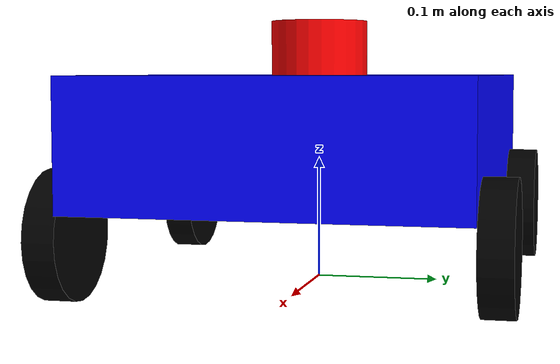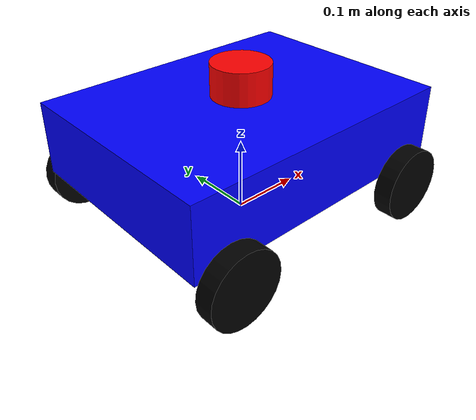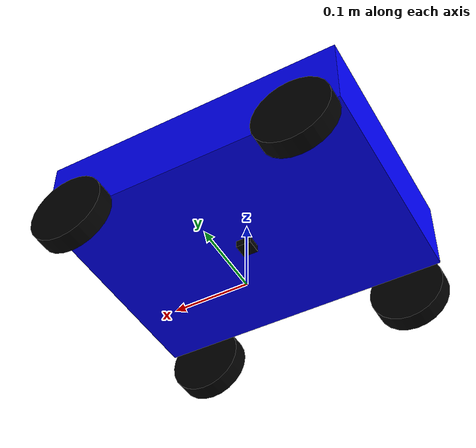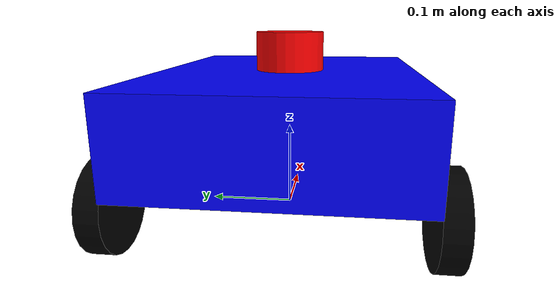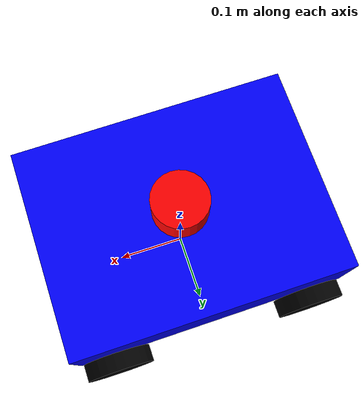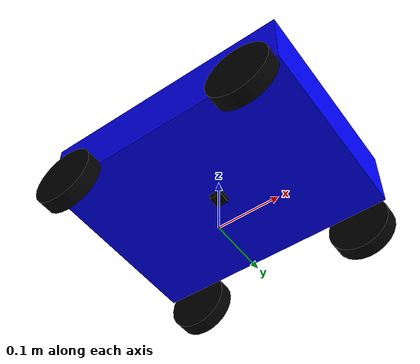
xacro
<?xml version="1.0"?>
<robot xmlns:xacro="http://www.ros.org/wiki/xacro" name="my_nav2_bot">

    <xacro:arg name="use_gazebo_odom_tf" default="false"/>

    <!-- 差速底盘变体：Gazebo Classic 用 diff_drive 吃 /cmd_vel 的 vx + wz。
         odom -> base_footprint 仅在 use_gazebo_odom_tf:=true 时由插件发布。 -->

    <!--机器人身体-->
    <xacro:property name="chassis_length" value="0.4"/>
    <xacro:property name="chassis_width" value="0.3"/>
    <xacro:property name="chassis_height" value="0.1"/>

    <!--轮子形态：普通圆柱轮，四轮同侧并联差速（skid-steer）-->
    <xacro:property name="wheel_radius" value="0.05"/>
    <xacro:property name="wheel_width" value="0.025"/>

    <!--轮子位置-->
    <xacro:property name="wheel_offset_x" value="${chassis_length / 2 - 0.05}"/>
    <xacro:property name="wheel_offset_y" value="${chassis_width / 2 + wheel_width / 2}"/>
    <xacro:property name="wheel_offset_z" value="-0.02"/>
    <xacro:property name="wheel_separation" value="${2 * wheel_offset_y}"/>

    <!--雷达形态-->
    <xacro:property name="laser_radius" value="0.03"/>
    <xacro:property name="laser_height" value="0.04"/>

    <!--深度相机形态-->
    <xacro:property name="camera_radius" value="0.03"/>
    <xacro:property name="camera_height" value="0.04"/>

    <!--机器人机身的物理属性-->
    <xacro:macro name="inertial_box" params="mass l w h *origin">
        <inertial>
            <xacro:insert_block name="origin"/>
            <mass value="${mass}"/>
            <inertia ixx="${(1/12) * mass * (w*w + h*h)}" ixy="0.0" ixz="0.0"
                    iyy="${(1/12) * mass * (l*l + h*h)}" iyz="0.0"
                    izz="${(1/12) * mass * (l*l + w*w)}"/>
        </inertial>
    </xacro:macro>

    <!--机器人轮胎的物理属性-->
    <xacro:macro name="inertial_cylinder" params="mass r h *origin">
        <inertial>
            <xacro:insert_block name="origin"/>
            <mass value="${mass}"/>
            <inertia ixx="${(1/12) * mass * (3*r*r + h*h)}" ixy="0.0" ixz="0.0"
                    iyy="${(1/12) * mass * (3*r*r + h*h)}" iyz="0.0"
                    izz="${(1/2) * mass * r*r}"/>
        </inertial>
    </xacro:macro>

    <!--声明材质颜色-->
    <material name="blue">
        <color rgba="0 0 1 1"/>
    </material>
    <material name="black">
        <color rgba="0 0 0 1"/>
    </material>
    <material name="red">
        <color rgba="1 0 0 1"/>
    </material>

    <!--机器人本体中心-->
    <link name="base_link">
        <visual>
            <origin xyz="0 0 ${chassis_height / 2}" rpy="0 0 0"/>
            <!--身体大小-->
            <geometry>
                <!--长方体-->
                <box size="${chassis_length} ${chassis_width} ${chassis_height}"/>
            </geometry>
            <material name="blue"/>
        </visual>
        <!--碰撞箱-->
        <collision>
            <origin xyz="0 0 ${chassis_height / 2}" rpy="0 0 0"/>
            <!--身体大小-->
            <geometry>
                <box size="${chassis_length} ${chassis_width} ${chassis_height}"/>
            </geometry>
        </collision>
        <!--物理属性-->
        <xacro:inertial_box mass="5.0" l="${chassis_length}" w="${chassis_width}" h="${chassis_height}">
            <origin xyz="0 0 ${chassis_height / 2}" rpy="0 0 0"/>
        </xacro:inertial_box>
    </link>

    <!--机器人中心在底面的投影-->
    <link name="base_footprint"/>

    <joint name="base_joint" type="fixed">
        <parent link="base_footprint"/>
        <child link="base_link"/>
        <origin xyz="0 0 ${chassis_height/2 - wheel_offset_z}" rpy="0 0 0"/>
    </joint>

    <!-- Drive wheels: 2WD differential. Rear contacts are low-friction
         supports. Four driven wheels overconstrain yaw in Gazebo ODE. -->
    <xacro:macro name="drive_wheel" params="prefix reflect_x reflect_y">

        <link name="${prefix}_wheel_link">
            <visual>
                <!--圆柱默认沿 z，绕 x 转 pi/2 后轮轴沿 y-->
                <origin xyz="0 0 0" rpy="${pi / 2} 0 0"/>
                <geometry>
                    <cylinder radius="${wheel_radius}" length="${wheel_width}"/>
                </geometry>
                <material name="black"/>
            </visual>
            <collision>
                <origin xyz="0 0 0" rpy="0 0 0"/>
                <geometry>
                    <sphere radius="${wheel_radius}"/>
                </geometry>
            </collision>
            <xacro:inertial_cylinder mass="0.5" r="${wheel_radius}" h="${wheel_width}">
                <origin xyz="0 0 0" rpy="${pi / 2} 0 0"/>
            </xacro:inertial_cylinder>
        </link>

        <joint name="${prefix}_wheel_joint" type="continuous">
            <parent link="base_link"/>
            <child link="${prefix}_wheel_link"/>
            <origin xyz="${reflect_x * wheel_offset_x} ${reflect_y * wheel_offset_y} ${wheel_offset_z}" rpy="0 0 0"/>
            <axis xyz="0 1 0"/>
            <limit effort="50" velocity="50"/>
            <dynamics damping="0.0" friction="0.0"/>
        </joint>

        <gazebo reference="${prefix}_wheel_link">
            <mu1>1.0</mu1>
            <mu2>1.0</mu2>
            <kp>200000.0</kp>
            <kd>10.0</kd>
            <minDepth>0.001</minDepth>
            <maxVel>0.1</maxVel>
        </gazebo>
    </xacro:macro>

    <!-- Rear supports: same visual, ice-like contact so they do not fight yaw. -->
    <xacro:macro name="support_wheel" params="prefix reflect_x reflect_y">

        <link name="${prefix}_wheel_link">
            <visual>
                <origin xyz="0 0 0" rpy="${pi / 2} 0 0"/>
                <geometry>
                    <cylinder radius="${wheel_radius}" length="${wheel_width}"/>
                </geometry>
                <material name="black"/>
            </visual>
            <collision>
                <origin xyz="0 0 0" rpy="0 0 0"/>
                <geometry>
                    <sphere radius="${wheel_radius}"/>
                </geometry>
            </collision>
            <xacro:inertial_cylinder mass="0.2" r="${wheel_radius}" h="${wheel_width}">
                <origin xyz="0 0 0" rpy="${pi / 2} 0 0"/>
            </xacro:inertial_cylinder>
        </link>

        <joint name="${prefix}_wheel_joint" type="fixed">
            <parent link="base_link"/>
            <child link="${prefix}_wheel_link"/>
            <origin xyz="${reflect_x * wheel_offset_x} ${reflect_y * wheel_offset_y} ${wheel_offset_z}" rpy="0 0 0"/>
        </joint>

        <gazebo reference="${prefix}_wheel_link">
            <mu1>0.02</mu1>
            <mu2>0.02</mu2>
            <slip1>0.2</slip1>
            <slip2>0.2</slip2>
            <kp>100000.0</kp>
            <kd>10.0</kd>
            <minDepth>0.001</minDepth>
            <maxVel>0.1</maxVel>
        </gazebo>
    </xacro:macro>

    <xacro:drive_wheel prefix="front_left" reflect_x="1" reflect_y="1"/>
    <xacro:drive_wheel prefix="front_right" reflect_x="1" reflect_y="-1"/>
    <xacro:support_wheel prefix="rear_left" reflect_x="-1" reflect_y="1"/>
    <xacro:support_wheel prefix="rear_right" reflect_x="-1" reflect_y="-1"/>

    <!-- 虚拟 2D 扫描坐标系：实车没有独立 2D 雷达。
         /scan 由 my_nav2_robot 的 pointcloud_to_laserscan_node 从 Mid360 点云水平切片生成，
         frame_id 固定为 laser_link，避免改 AMCL / SLAM Toolbox / costmap。 -->
    <link name="laser_link">
        <visual>
            <geometry>
                <cylinder radius="${laser_radius}" length="${laser_height}"/>
            </geometry>
            <material name="red"/>
        </visual>
        <xacro:inertial_cylinder mass="0.1" r="${laser_radius}" h="${laser_height}">
            <origin xyz="0 0 0" rpy="0 0 0"/>
        </xacro:inertial_cylinder>
    </link>

    <joint name="laser_joint" type="fixed">
        <parent link="base_link"/>
        <child link="laser_link"/>
        <origin xyz="0 0 ${chassis_height + laser_height / 2}" rpy="0 0 0"/>
    </joint>

    <!-- Mid360-style 3D LiDAR used by the LIO frontend. -->
    <link name="livox_frame">
        <visual>
            <geometry>
                <cylinder radius="0.04" length="0.05"/>
            </geometry>
            <material name="red"/>
        </visual>
        <xacro:inertial_cylinder mass="0.2" r="0.04" h="0.05">
            <origin xyz="0 0 0" rpy="0 0 0"/>
        </xacro:inertial_cylinder>
    </link>

    <joint name="livox_joint" type="fixed">
        <parent link="base_link"/>
        <child link="livox_frame"/>
        <origin xyz="0 0 0.12" rpy="0 0 0"/>
    </joint>

    <!-- Keep the 3D LiDAR on its own SDF link instead of merging both lidars. -->
    <gazebo reference="livox_joint">
        <preserveFixedJoint>true</preserveFixedJoint>
    </gazebo>

    <!--深度相机-->
    <!--物理位置-->

    <!--imu-->
    <link name = "imu_link">
        <visual>
            <geometry>
                <box size = "0.02 0.02 0.02"/>
            </geometry>
            <material name = "black"/>
        </visual>
        <xacro:inertial_box mass="0.01" l="0.02" w="0.02" h="0.02">
            <origin xyz="0 0 0" rpy="0 0 0"/>
        </xacro:inertial_box>
    </link>

    <joint name = "imu_joint" type = "fixed">
        <parent link = "base_link"/>
        <child link = "imu_link"/>
        <origin xyz="0 0 0" rpy="0 0 0"/>
    </joint>

    <!-- Mid360 CSV scan pattern with per-point timestamps for the LIO frontend. -->
    <gazebo>
        <plugin name="mid360" filename="libmy_nav2_robot_mid360_gz_plugin.so">
            <tracking_link_name>livox_frame</tracking_link_name>
            <sensor_pose>0 0 0 0 0 0</sensor_pose>
            <frame_id>livox_frame</frame_id>
            <topic>/livox/lidar</topic>
            <csv_file_name>$(find my_nav2_robot)/config/mid360.csv</csv_file_name>
            <samples_per_scan>20000</samples_per_scan>
            <downsample>1</downsample>
            <update_rate>10.0</update_rate>
            <min_range>0.2</min_range>
            <max_range>12.0</max_range>
            <range_noise_stddev>0.005</range_noise_stddev>
            <dropout_rate>0.0</dropout_rate>
            <noise_seed>42</noise_seed>
        </plugin>
    </gazebo>

    <!--深度相机插件-->

    <!-- 两轮差速：只驱动前轴。后轴是低摩擦支撑轮，避免 Classic ODE 四轮锁死偏航。
         轮式里程计发到 /wheel_odom。publish_odom_tf 由 use_gazebo_odom_tf 控制。 -->
    <gazebo>
        <plugin name="diff_drive" filename="libgazebo_ros_diff_drive.so">
            <ros>
                <remapping>cmd_vel:=cmd_vel</remapping>
                <remapping>odom:=wheel_odom</remapping>
            </ros>
            <num_wheel_pairs>1</num_wheel_pairs>
            <left_joint>front_left_wheel_joint</left_joint>
            <right_joint>front_right_wheel_joint</right_joint>
            <wheel_separation>${wheel_separation}</wheel_separation>
            <wheel_diameter>${2 * wheel_radius}</wheel_diameter>
            <max_wheel_torque>50</max_wheel_torque>
            <max_wheel_acceleration>8.0</max_wheel_acceleration>
            <update_rate>50</update_rate>
            <command_topic>cmd_vel</command_topic>
            <odometry_topic>wheel_odom</odometry_topic>
            <publish_odom>true</publish_odom>
            <publish_odom_tf>$(arg use_gazebo_odom_tf)</publish_odom_tf>
            <publish_wheel_tf>false</publish_wheel_tf>
            <odometry_frame>odom</odometry_frame>
            <robot_base_frame>base_footprint</robot_base_frame>
        </plugin>
        <plugin name="joint_state_publisher" filename="libgazebo_ros_joint_state_publisher.so">
            <ros>
                <remapping>joint_states:=joint_states</remapping>
            </ros>
            <update_rate>50</update_rate>
            <joint_name>front_left_wheel_joint</joint_name>
            <joint_name>front_right_wheel_joint</joint_name>
        </plugin>
        <plugin name="p3d_ground_truth" filename="libgazebo_ros_p3d.so">
            <ros>
                <remapping>odom:=ground_truth</remapping>
            </ros>
            <body_name>base_footprint</body_name>
            <frame_name>world</frame_name>
            <update_rate>200.0</update_rate>
            <xyz_offset>0 0 0</xyz_offset>
            <rpy_offset>0 0 0</rpy_offset>
        </plugin>
    </gazebo>
</robot>
